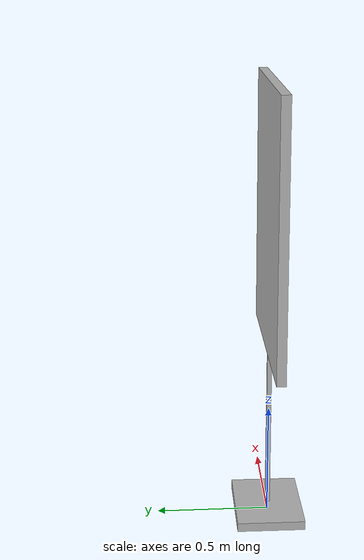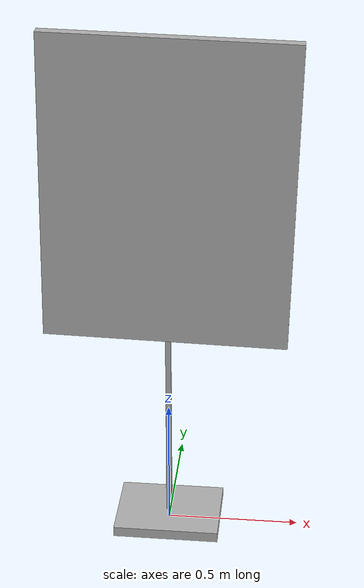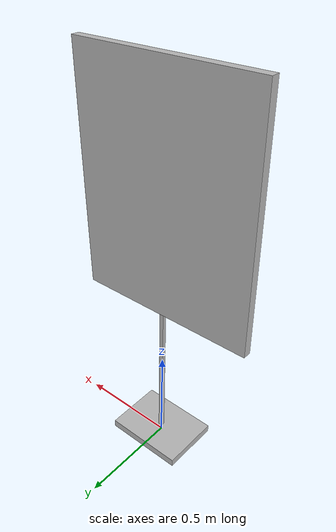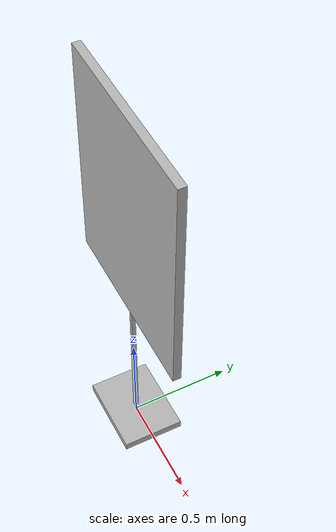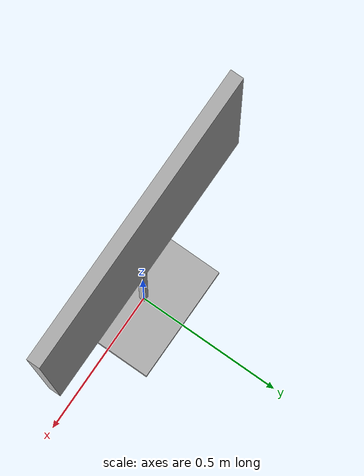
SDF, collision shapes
<?xml version="1.0" ?>
<sdf version="1.5">
  <model name="ISCAS_post">
    <static>true</static>
    <link name="link">
      <collision name="surface">
        <pose>0 0 1.375 0 0.02 0</pose>
        <geometry>
          <box>
            <size>0.9 0.04 1.15</size>
          </box>
        </geometry>
      </collision>

      <collision name="column">
        <pose>0 0 0.4 0 0 0</pose>
        <geometry>
          <box>
            <size>0.02 0.02 0.8</size>
          </box>
        </geometry>
      </collision>

      <collision name="base">
        <pose>0 0 0.02 0 0 0</pose>
        <geometry>
          <box>
            <size>0.4 0.3 0.04</size>
          </box>
        </geometry>
      </collision>

      <visual name="visual">
        <geometry>
          <mesh>
            <uri>model://ISCAS/ISCAS_post/meshes/post.dae</uri>
          </mesh>
        </geometry>
      </visual>
    </link>
  </model>
</sdf>
